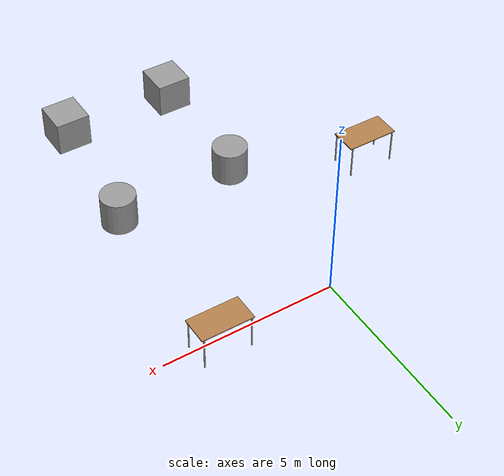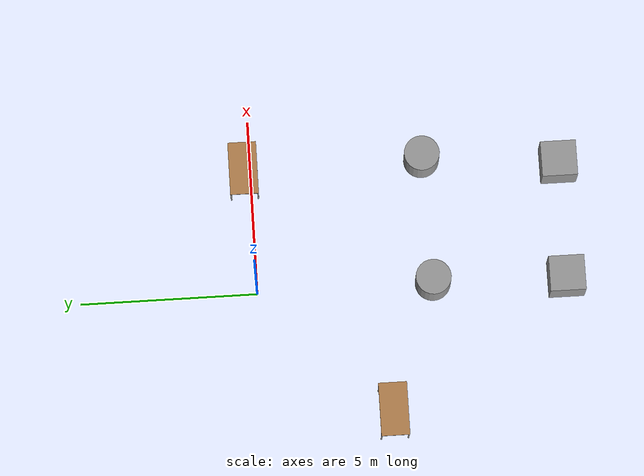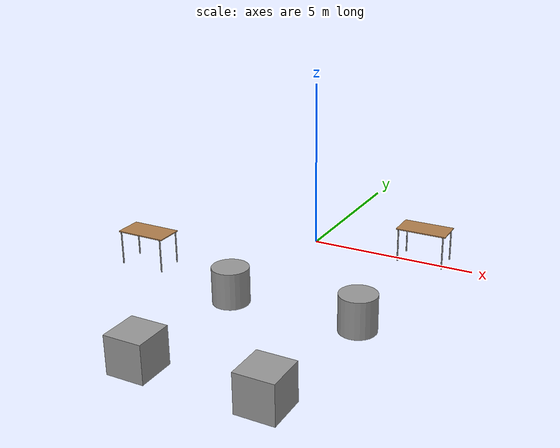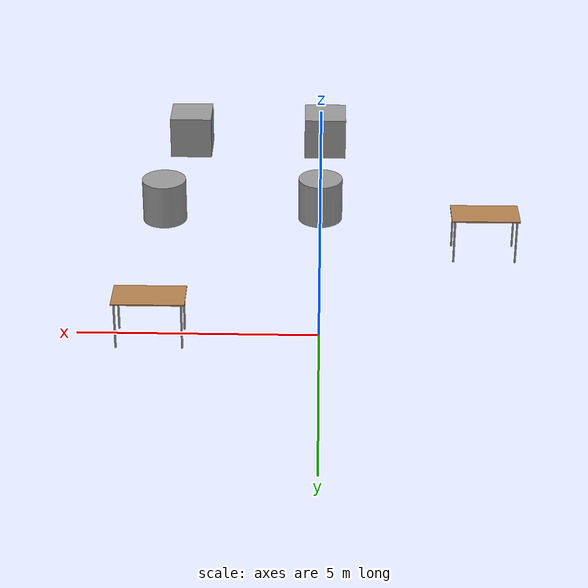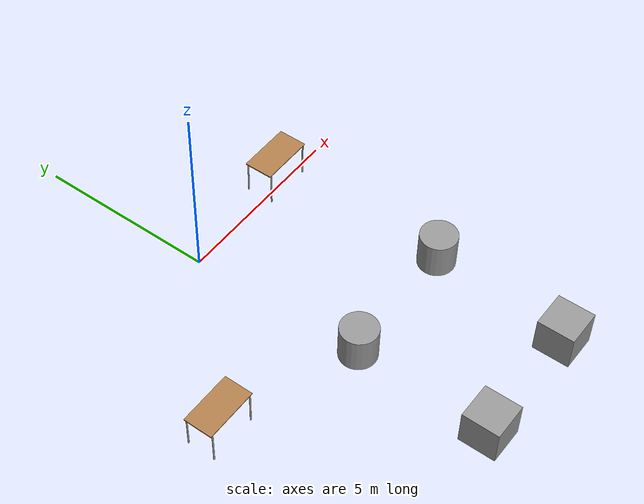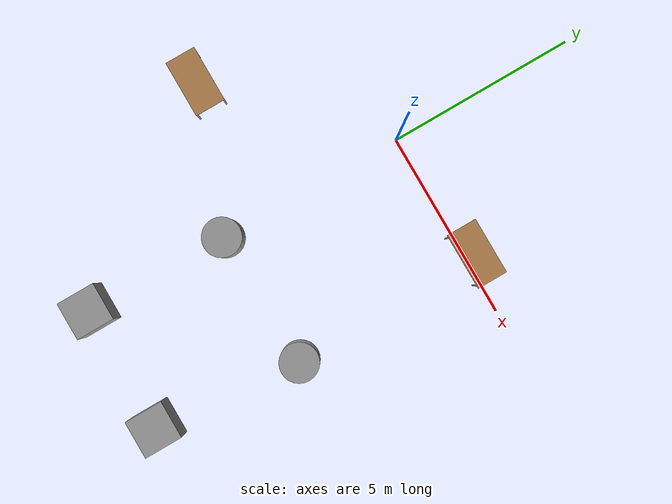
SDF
<sdf version="1.6">
 <world name="default">
  <gravity>0 0 -9.8</gravity>
  <magnetic_field>6e-06 2.3e-05 -4.2e-05</magnetic_field>
  <atmosphere type="adiabatic"/>
  <physics name="default_physics" default="0" type="ode">
   <max_step_size>0.001</max_step_size>
   <real_time_factor>1</real_time_factor>
   <real_time_update_rate>1000</real_time_update_rate>
  </physics>
  <scene><ambient>0.4 0.4 0.4 1</ambient><background>0.7 0.7 0.7 1</background><shadows>1</shadows></scene>
  <audio><device>default</device></audio>
  <spherical_coordinates>
   <surface_model>EARTH_WGS84</surface_model>
   <latitude_deg>0</latitude_deg>
   <longitude_deg>0</longitude_deg>
   <elevation>0</elevation>
   <heading_deg>0</heading_deg>
  </spherical_coordinates>
  <model name="table">
   <static>1</static>
   <link name="link">
    <collision name="surface">
     <pose>0 0 1 0 -0 0</pose>
     <geometry><box><size>1.5 0.8 0.03</size></box></geometry>
     <surface><friction><ode><mu>0.6</mu><mu2>0.6</mu2></ode></friction></surface>
    </collision>
    <visual name="visual1">
     <pose>0 0 1 0 -0 0</pose>
     <geometry><box><size>1.5 0.8 0.03</size></box></geometry>
     <material>
      <script><uri>file://media/materials/scripts/gazebo.material</uri><name>Gazebo/Wood</name></script>
     </material>
    </visual>
    <collision name="front_left_leg">
     <pose>0.68 0.38 0.5 0 -0 0</pose>
     <geometry><cylinder><radius>0.02</radius><length>1</length></cylinder></geometry>
    </collision>
    <visual name="front_left_leg">
     <pose>0.68 0.38 0.5 0 -0 0</pose>
     <geometry><cylinder><radius>0.02</radius><length>1</length></cylinder></geometry>
     <material>
      <script><uri>file://media/materials/scripts/gazebo.material</uri><name>Gazebo/Grey</name></script>
     </material>
    </visual>
    <collision name="front_right_leg">
     <pose>0.68 -0.38 0.5 0 -0 0</pose>
     <geometry><cylinder><radius>0.02</radius><length>1</length></cylinder></geometry>
    </collision>
    <visual name="front_right_leg">
     <pose>0.68 -0.38 0.5 0 -0 0</pose>
     <geometry><cylinder><radius>0.02</radius><length>1</length></cylinder></geometry>
     <material>
      <script><uri>file://media/materials/scripts/gazebo.material</uri><name>Gazebo/Grey</name></script>
     </material>
    </visual>
    <collision name="back_right_leg">
     <pose>-0.68 -0.38 0.5 0 -0 0</pose>
     <geometry><cylinder><radius>0.02</radius><length>1</length></cylinder></geometry>
    </collision>
    <visual name="back_right_leg">
     <pose>-0.68 -0.38 0.5 0 -0 0</pose>
     <geometry><cylinder><radius>0.02</radius><length>1</length></cylinder></geometry>
     <material>
      <script><uri>file://media/materials/scripts/gazebo.material</uri><name>Gazebo/Grey</name></script>
     </material>
    </visual>
    <collision name="back_left_leg">
     <pose>-0.68 0.38 0.5 0 -0 0</pose>
     <geometry><cylinder><radius>0.02</radius><length>1</length></cylinder></geometry>
    </collision>
    <visual name="back_left_leg">
     <pose>-0.68 0.38 0.5 0 -0 0</pose>
     <geometry><cylinder><radius>0.02</radius><length>1</length></cylinder></geometry>
     <material>
      <script><uri>file://media/materials/scripts/gazebo.material</uri><name>Gazebo/Grey</name></script>
     </material>
    </visual>
   </link>
   <pose>3.46142 0.191959 0 0 -0 0</pose>
  </model>
  <model name="table_0">
   <static>1</static>
   <link name="link">
    <collision name="surface">
     <pose>0 0 1 0 -0 0</pose>
     <geometry><box><size>1.5 0.8 0.03</size></box></geometry>
     <surface><friction><ode><mu>0.6</mu><mu2>0.6</mu2></ode></friction></surface>
    </collision>
    <visual name="visual1">
     <pose>0 0 1 0 -0 0</pose>
     <geometry><box><size>1.5 0.8 0.03</size></box></geometry>
     <material>
      <script><uri>file://media/materials/scripts/gazebo.material</uri><name>Gazebo/Wood</name></script>
     </material>
    </visual>
    <collision name="front_left_leg">
     <pose>0.68 0.38 0.5 0 -0 0</pose>
     <geometry><cylinder><radius>0.02</radius><length>1</length></cylinder></geometry>
    </collision>
    <visual name="front_left_leg">
     <pose>0.68 0.38 0.5 0 -0 0</pose>
     <geometry><cylinder><radius>0.02</radius><length>1</length></cylinder></geometry>
     <material>
      <script><uri>file://media/materials/scripts/gazebo.material</uri><name>Gazebo/Grey</name></script>
     </material>
    </visual>
    <collision name="front_right_leg">
     <pose>0.68 -0.38 0.5 0 -0 0</pose>
     <geometry><cylinder><radius>0.02</radius><length>1</length></cylinder></geometry>
    </collision>
    <visual name="front_right_leg">
     <pose>0.68 -0.38 0.5 0 -0 0</pose>
     <geometry><cylinder><radius>0.02</radius><length>1</length></cylinder></geometry>
     <material>
      <script><uri>file://media/materials/scripts/gazebo.material</uri><name>Gazebo/Grey</name></script>
     </material>
    </visual>
    <collision name="back_right_leg">
     <pose>-0.68 -0.38 0.5 0 -0 0</pose>
     <geometry><cylinder><radius>0.02</radius><length>1</length></cylinder></geometry>
    </collision>
    <visual name="back_right_leg">
     <pose>-0.68 -0.38 0.5 0 -0 0</pose>
     <geometry><cylinder><radius>0.02</radius><length>1</length></cylinder></geometry>
     <material>
      <script><uri>file://media/materials/scripts/gazebo.material</uri><name>Gazebo/Grey</name></script>
     </material>
    </visual>
    <collision name="back_left_leg">
     <pose>-0.68 0.38 0.5 0 -0 0</pose>
     <geometry><cylinder><radius>0.02</radius><length>1</length></cylinder></geometry>
    </collision>
    <visual name="back_left_leg">
     <pose>-0.68 0.38 0.5 0 -0 0</pose>
     <geometry><cylinder><radius>0.02</radius><length>1</length></cylinder></geometry>
     <material>
      <script><uri>file://media/materials/scripts/gazebo.material</uri><name>Gazebo/Grey</name></script>
     </material>
    </visual>
   </link>
   <pose>-3.65212 -3.62851 0 0 -0 0</pose>
  </model>
  <model name="unit_box_0">
   <pose>3.18381 -8.71564 0.6898 -0 -0 -0</pose>
   <link name="link">
    <inertial>
     <mass>1</mass>
     <inertia>
      <ixx>0.166667</ixx>
      <ixy>0</ixy>
      <ixz>0</ixz>
      <iyy>0.166667</iyy>
      <iyz>0</iyz>
      <izz>0.166667</izz>
     </inertia>
    </inertial>
    <collision name="collision"><geometry><box><size>1 1 1</size></box></geometry></collision>
    <visual name="visual">
     <geometry><box><size>1 1 1</size></box></geometry>
     <material>
      <script><name>Gazebo/Grey</name><uri>file://media/materials/scripts/gazebo.material</uri></script>
     </material>
    </visual>
   </link>
  </model>
  <model name="unit_cylinder_0">
   <pose>-0.006251 -4.96606 0.689792 -3e-06 -0 -2.2e-05</pose>
   <link name="link">
    <inertial>
     <mass>1</mass>
     <inertia><ixx>0.145833</ixx><ixy>0</ixy><ixz>0</ixz><iyy>0.145833</iyy><iyz>0</iyz><izz>0.125</izz></inertia>
    </inertial>
    <collision name="collision">
     <geometry><cylinder><radius>0.5</radius><length>1</length></cylinder></geometry>
    </collision>
    <visual name="visual">
     <geometry><cylinder><radius>0.5</radius><length>1</length></cylinder></geometry>
     <material>
      <script><name>Gazebo/Grey</name><uri>file://media/materials/scripts/gazebo.material</uri></script>
     </material>
    </visual>
   </link>
  </model>
  <model name="unit_box">
   <pose>-0.114768 -8.71501 0.6898 -0 -0 -0</pose>
   <link name="link">
    <inertial>
     <mass>1</mass>
     <inertia>
      <ixx>0.166667</ixx>
      <ixy>0</ixy>
      <ixz>0</ixz>
      <iyy>0.166667</iyy>
      <iyz>0</iyz>
      <izz>0.166667</izz>
     </inertia>
    </inertial>
    <collision name="collision"><geometry><box><size>1 1 1</size></box></geometry></collision>
    <visual name="visual">
     <geometry><box><size>1 1 1</size></box></geometry>
     <material>
      <script><name>Gazebo/Grey</name><uri>file://media/materials/scripts/gazebo.material</uri></script>
     </material>
    </visual>
   </link>
  </model>
  <model name="unit_cylinder">
   <pose>3.5591 -4.86484 0.6898 0 0 -2e-06</pose>
   <link name="link">
    <inertial>
     <mass>1</mass>
     <inertia><ixx>0.145833</ixx><ixy>0</ixy><ixz>0</ixz><iyy>0.145833</iyy><iyz>0</iyz><izz>0.125</izz></inertia>
    </inertial>
    <collision name="collision">
     <geometry><cylinder><radius>0.5</radius><length>1</length></cylinder></geometry>
    </collision>
    <visual name="visual">
     <geometry><cylinder><radius>0.5</radius><length>1</length></cylinder></geometry>
     <material>
      <script><name>Gazebo/Grey</name><uri>file://media/materials/scripts/gazebo.material</uri></script>
     </material>
    </visual>
   </link>
  </model>
 </world>
</sdf>
